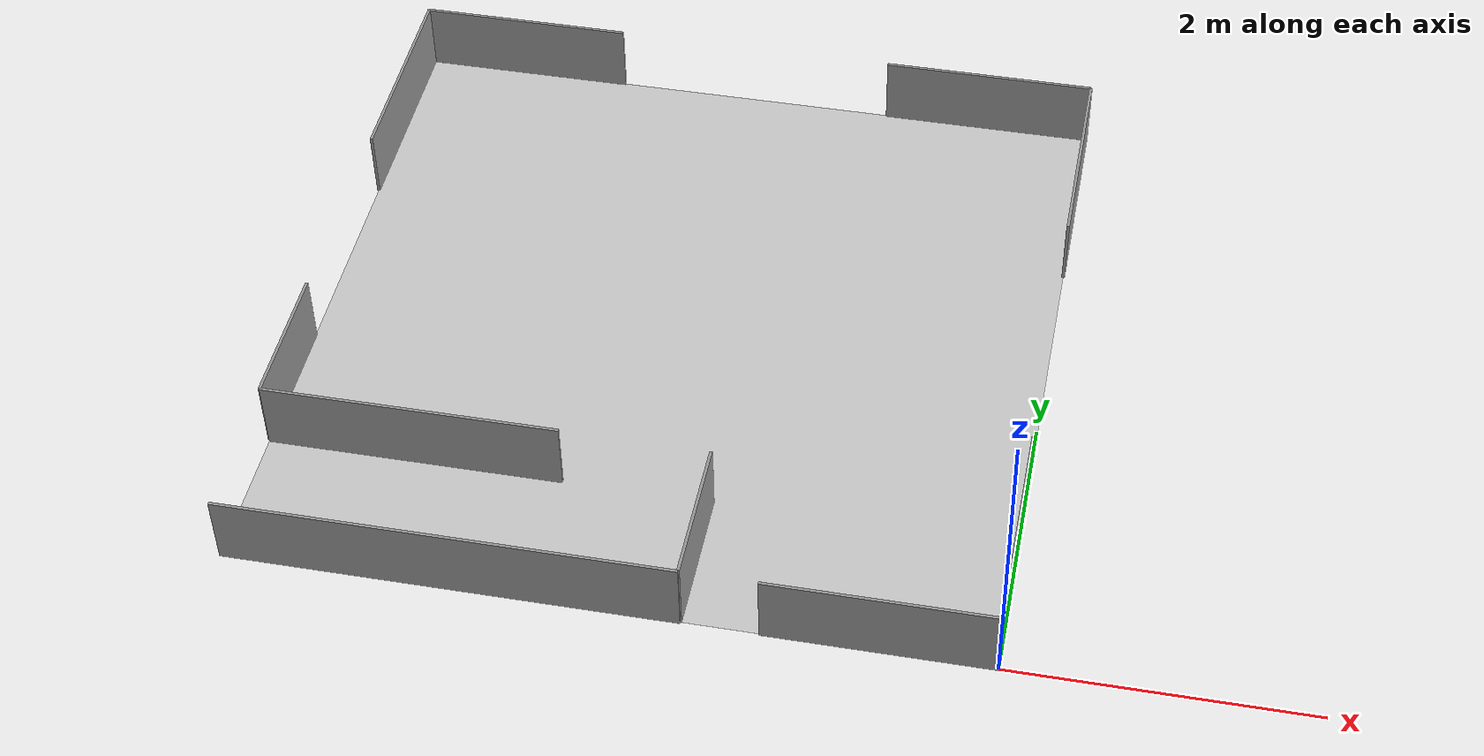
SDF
<?xml version="1.0" ?>
<sdf version="1.5">
  <model name="Logistics League Field Challenge">
    <pose>-2.5 2.5 0 0 0 0</pose>
    <static>true</static>
    <link name="field">
      <pose>0 0 0.01 0 0 0</pose>
      <collision name="collision">
        <geometry>
          <plane>
            <normal>0 0 1</normal>
            <size>15 9</size>
          </plane>
        </geometry>
        <surface>
          <friction>
            <ode>
              <mu>100</mu>
              <mu2>50</mu2>
            </ode>
          </friction>
        </surface>
      </collision>
      <visual name="carpet">
        <cast_shadows>false</cast_shadows>
        <geometry>
          <plane>
            <normal>0 0 1</normal>
            <size>5 5</size>
          </plane>
        </geometry>
        <material>
          <script>
            <uri>model://logistics_league_field_challenge/materials/scripts/</uri>
            <uri>model://logistics_league_field_challenge/materials/textures/</uri>
            <name>Logistics_League_Field/Image</name>
          </script>
        </material>
      </visual>
    </link>

    <link name="wall_bottom_middle_left_down">
      <pose>0.5 -2.0 0.25 0 0 0</pose>
      <visual name="wall_bottom_middle_left_down-visual">
        <geometry>
          <box>
            <size>.02 1 .5</size>
          </box>
        </geometry>
        <cast_shadows>false</cast_shadows>
        <material>
          <script>
            <uri>file://media/materials/scripts/gazebo.material</uri>
            <name>Gazebo/Grey</name>
          </script>
        </material>
      </visual>
      <collision name="wall_bottom_middle_left_down-collision">
        <geometry>
          <box>
            <size>.02 1 .5</size>
          </box>
        </geometry>
      </collision>
    </link>

    <link name="wall_bottom_middle_left_outer">
      <pose>-1.0 -2.5 0.25 0 0 1.570796327</pose>
      <visual name="wall_bottom_middle_left_outer-visual">
        <geometry>
          <box>
            <size>.02 3.0 .5</size>
          </box>
        </geometry>
        <cast_shadows>false</cast_shadows>
        <material>
          <script>
            <uri>file://media/materials/scripts/gazebo.material</uri>
            <name>Gazebo/Grey</name>
          </script>
        </material>
      </visual>
      <collision name="wall_bottom_middle_left_outer-collision">
        <geometry>
          <box>
            <size>.02 3.0 .5</size>
          </box>
        </geometry>
      </collision>
    </link>

    <link name="wall_bottom_left">
      <pose>-1.5 -1.5 0.25 0 0 1.570796327</pose>
      <visual name="wall_bottom_left-visual">
        <geometry>
          <box>
            <size>.02 2 .5</size>
          </box>
        </geometry>
        <cast_shadows>false</cast_shadows>
        <material>
          <script>
            <uri>file://media/materials/scripts/gazebo.material</uri>
            <name>Gazebo/Grey</name>
          </script>
        </material>
      </visual>
      <collision name="wall_bottom_left-collision">
        <geometry>
          <box>
            <size>.02 2 .5</size>
          </box>
        </geometry>
      </collision>
    </link>

    <link name="wall_bottom_right">
      <pose>1.75 -2.5 0.25 0 0 1.570796327</pose>
      <visual name="wall_bottom_right-visual">
        <geometry>
          <box>
            <size>.02 1.5 .5</size>
          </box>
        </geometry>
        <cast_shadows>false</cast_shadows>
        <material>
          <script>
            <uri>file://media/materials/scripts/gazebo.material</uri>
            <name>Gazebo/Grey</name>
          </script>
        </material>
      </visual>
      <collision name="wall_bottom_right-collision">
        <geometry>
          <box>
            <size>.02 1.5 .5</size>
          </box>
        </geometry>
      </collision>
    </link>

    <link name="wall_left_bottom">
      <pose>-2.5 -1.0 0.25 0 0 0</pose>
      <visual name="wall_left_bottom-visual">
        <geometry>
          <box>
            <size>.02 1 .5</size>
          </box>
        </geometry>
        <cast_shadows>false</cast_shadows>
        <material>
          <script>
            <uri>file://media/materials/scripts/gazebo.material</uri>
            <name>Gazebo/Grey</name>
          </script>
        </material>
      </visual>
      <collision name="wall_left_bottom-collision">
        <geometry>
          <box>
            <size>.02 1 .5</size>
          </box>
        </geometry>
      </collision>
    </link>

    <link name="wall_left_top">
      <pose>-2.5 1.75 0.25 0 0 0</pose>
      <visual name="wall_left_top-visual">
        <geometry>
          <box>
            <size>.02 1.5 .5</size>
          </box>
        </geometry>
        <cast_shadows>false</cast_shadows>
        <material>
          <script>
            <uri>file://media/materials/scripts/gazebo.material</uri>
            <name>Gazebo/Grey</name>
          </script>
        </material>
      </visual>
      <collision name="wall_left_top-collision">
        <geometry>
          <box>
            <size>.02 1.5 .5</size>
          </box>
        </geometry>
      </collision>
    </link>

    <link name="wall_right_bottom">
      <pose>2.5 -1.75 0.25 0 0 0</pose>
      <visual name="wall_right_bottom-visual">
        <geometry>
          <box>
            <size>.02 1.5 .5</size>
          </box>
        </geometry>
        <cast_shadows>false</cast_shadows>
        <material>
          <script>
            <uri>file://media/materials/scripts/gazebo.material</uri>
            <name>Gazebo/Grey</name>
          </script>
        </material>
      </visual>
      <collision name="wall_right_bottom-collision">
        <geometry>
          <box>
            <size>.02 1.5 .5</size>
          </box>
        </geometry>
      </collision>
    </link>

    <link name="wall_right_top">
      <pose>2.5 1.75 0.25 0 0 0</pose>
      <visual name="wall_right_top-visual">
        <geometry>
          <box>
            <size>.02 1.5 .5</size>
          </box>
        </geometry>
        <cast_shadows>false</cast_shadows>
        <material>
          <script>
            <uri>file://media/materials/scripts/gazebo.material</uri>
            <name>Gazebo/Grey</name>
          </script>
        </material>
      </visual>
      <collision name="wall_right_top-collision">
        <geometry>
          <box>
            <size>.02 1.5 .5</size>
          </box>
        </geometry>
      </collision>
    </link>

    <link name="wall_top_left">
      <pose>-1.75 2.5 0.25 0 0 1.570796327</pose>
      <visual name="wall_top_left-visual">
        <geometry>
          <box>
            <size>.02 1.5 .5</size>
          </box>
        </geometry>
        <cast_shadows>false</cast_shadows>
        <material>
          <script>
            <uri>file://media/materials/scripts/gazebo.material</uri>
            <name>Gazebo/Grey</name>
          </script>
        </material>
      </visual>
      <collision name="wall_top_left-collision">
        <geometry>
          <box>
            <size>.02 1.5 .5</size>
          </box>
        </geometry>
      </collision>
    </link>

    <link name="wall_top_right">
      <pose>1.75 2.5 0.25 0 0 1.570796327</pose>
      <visual name="wall_top_right-visual">
        <geometry>
          <box>
             <size>.02 1.5 .5</size>
          </box>
        </geometry>
        <cast_shadows>false</cast_shadows>
        <material>
          <script>
            <uri>file://media/materials/scripts/gazebo.material</uri>
            <name>Gazebo/Grey</name>
          </script>
        </material>
      </visual>
      <collision name="wall_top_right-collision">
        <geometry>
          <box>
            <size>.02 1.5 .5</size>
          </box>
        </geometry>
      </collision>
    </link>

  </model>
</sdf>
